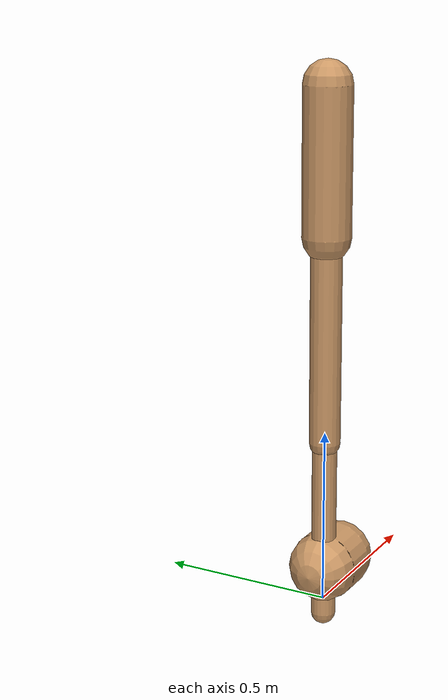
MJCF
<mujoco model="walker2d">
  <compiler angle="degree" coordinate="global" inertiafromgeom="true" />
  <default>
    <joint armature="0.01" damping=".1" limited="true" />
    <geom conaffinity="0" condim="3" contype="1" density="1000" friction="0.8 .1 .1" rgba="0.8 0.6 .4 1" />
  </default>
  <option integrator="RK4" timestep="0.002" />
  <worldbody>

    <body name="torso" pos="0 0 0.2670872849592314">
      <joint armature="0" axis="1 0 0" damping="0" limited="false" name="ignorex" pos="0 0 0" stiffness="0" type="slide" />
      <joint armature="0" axis="0 0 1" damping="0" limited="false" name="ignorez" pos="0 0 0" ref="1.25" stiffness="0" type="slide" />
      <joint armature="0" axis="0 1 0" damping="0" limited="false" name="ignorey" pos="0 0 0" stiffness="0" type="hinge" />
      <geom fromto="0 0 1.45 0 0 1.05" name="torso_geom" size="0.06737932454728972" type="capsule" />
      <body name="thigh">
        <joint axis="0 -1 0" name="thigh_joint" pos="0 0 1.05" range="-150 0" type="hinge" />
        <geom fromto="0.0 0.0 1.05 0.0 0.0 0.4734849702824693" name="thigh_geom" size="0.043751783830768956" type="capsule" />
        <body name="leg" pos="0.0 0.0 -0.1265150297175307">
          <joint axis="0 -1 0" name="leg_joint" pos="0 0 0.6" range="-150 0" type="hinge" />
          <geom fromto="0.0 0.0 0.6 0.0 0.0 -0.040572255241700717" name="leg_geom" size="0.03500142706461516" type="capsule" />
          <body name="foot" pos="0.0 0.0 -0.14057225524170072">
            <joint axis="0 -1 0" name="foot_joint" pos="0 0 0.1" range="-45 45" type="hinge" />
            <geom fromto="0.0 0.0 0.1 0.09171724633400805 0.0 0.1" name="foot_geom" size="0.09779752847548534" type="capsule" />
          </body>
        </body>
      </body>

      <body name="thigh_left">
        <joint axis="0 -1 0" name="thigh_left_joint" pos="0 0 1.05" range="-150 0" type="hinge" />
        <geom fromto="0.0 0.0 1.05 0.0 0.0 0.4734849702824693" name="thigh_left_geom" rgba=".7 .3 .6 1" size="0.043751783830768956" type="capsule" />
        <body name="leg_left" pos="0.0 0.0 -0.1265150297175307">
          <joint axis="0 -1 0" name="leg_left_joint" pos="0 0 0.6" range="-150 0" type="hinge" />
          <geom fromto="0.0 0.0 0.6 0.0 0.0 -0.040572255241700717" name="leg_left_geom" rgba=".7 .3 .6 1" size="0.03500142706461516" type="capsule" />
          <body name="foot_left" pos="0.0 0.0 -0.14057225524170072">
            <joint axis="0 -1 0" name="foot_left_joint" pos="0 0 0.1" range="-45 45" type="hinge" />
            <geom fromto="0.0 0.0 0.1 0.09171724633400805 0.0 0.1" name="foot_left_geom" rgba=".7 .3 .6 1" size="0.09779752847548534" type="capsule" />
          </body>
        </body>
      </body>
    </body>
  </worldbody>
  <actuator>

    <motor ctrllimited="true" ctrlrange="-1.0 1.0" gear="100" joint="thigh_joint" />
    <motor ctrllimited="true" ctrlrange="-1.0 1.0" gear="100" joint="leg_joint" />
    <motor ctrllimited="true" ctrlrange="-1.0 1.0" gear="100" joint="foot_joint" />
    <motor ctrllimited="true" ctrlrange="-1.0 1.0" gear="100" joint="thigh_left_joint" />
    <motor ctrllimited="true" ctrlrange="-1.0 1.0" gear="100" joint="leg_left_joint" />
    <motor ctrllimited="true" ctrlrange="-1.0 1.0" gear="100" joint="foot_left_joint" />

  </actuator>
</mujoco>
